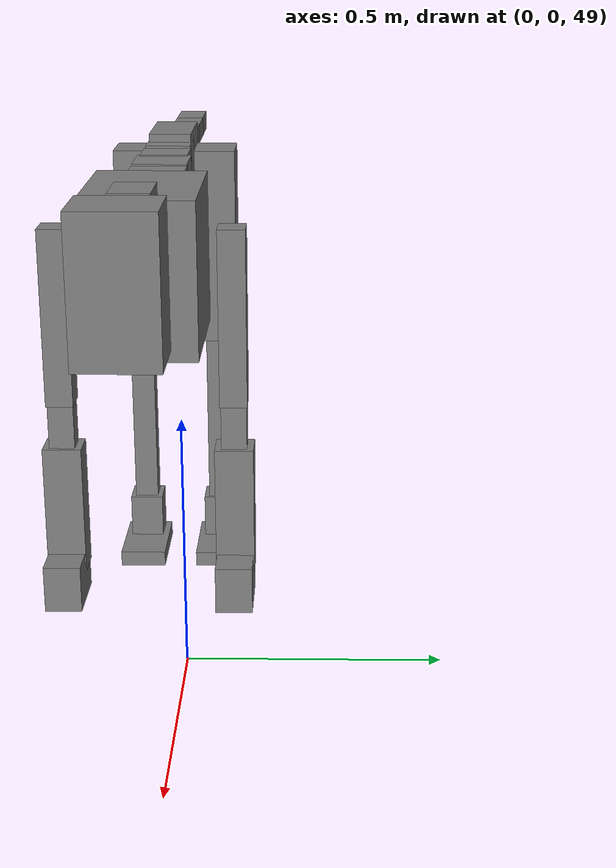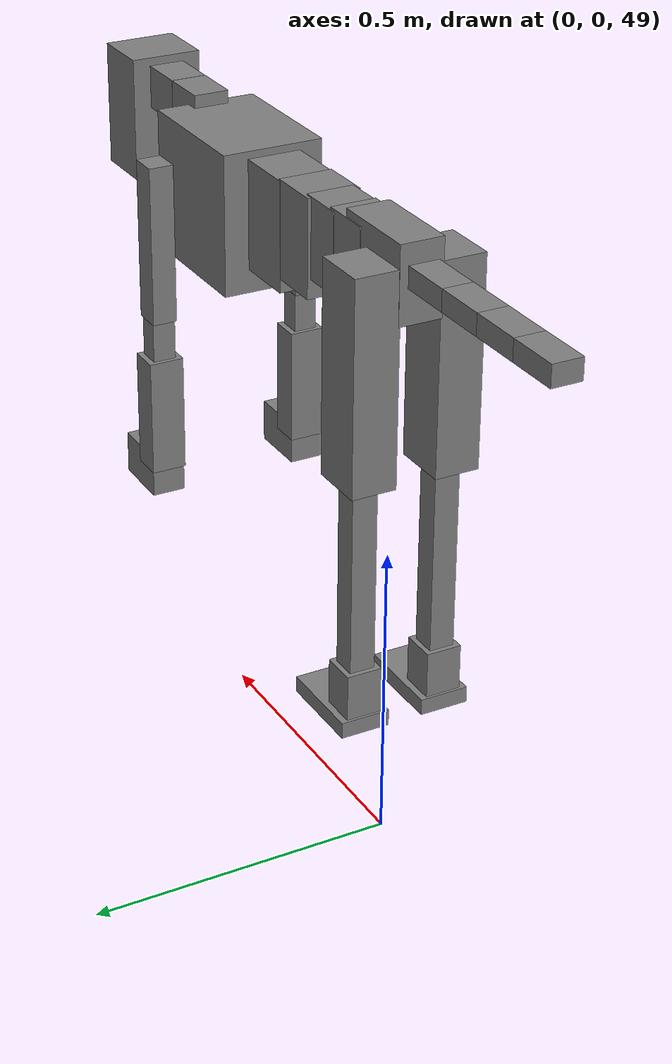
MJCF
<mujoco model="dog">

    <default>
        <joint armature="0.02" stiffness="1" damping="0.2" limited="true"/>
        <geom condim="3" friction="1 0.05 0.05" margin="0.01"/>
        <motor ctrllimited="true" ctrlrange="-1.0 1.0" forcelimited="true" gear="50"/>
    </default>

    <compiler inertiafromgeom="true" angle="radian"/>

    <option timestep="0.016" iterations="50" tolerance="1e-10" solver="Newton" jacobian="dense" cone="pyramidal"/>

    <size nconmax="20000" njmax="60000" nstack="5000000"/>
    <visual>
        <map force="0.1" zfar="30"/>
        <rgba haze="0.15 0.25 0.35 1"/>
        <quality shadowsize="2048"/>
        <global offwidth="800" offheight="800"/>
    </visual>

    <asset>
        <texture type="skybox" builtin="gradient" rgb1="0.3 0.5 0.7" rgb2="0 0 0" width="512" height="512"/>
        <texture name="texplane" type="2d" builtin="checker" rgb1=".2 .3 .4" rgb2=".1 0.15 0.2" width="512" height="512"
                 mark="cross" markrgb=".8 .8 .8"/>
        <texture name="texgeom" type="cube" builtin="flat" mark="cross" width="127" height="1278" rgb1="0.8 0.6 0.4"
                 rgb2="0.8 0.6 0.4" markrgb="1 1 1" random="0.01"/>

        <material name="matplane" reflectance="0.3" texture="texplane" texrepeat="1 1" texuniform="true"/>
        <material name="matgeom" texture="texgeom" texuniform="true" rgba="0.8 0.6 .4 1"/>
    </asset>

    <worldbody>
        <geom name="floor" pos="0 0 0" size="0 0 .25" type="plane" material="matplane" condim="3"/>

        <light directional="false" diffuse=".2 .2 .2" specular="0 0 0" pos="0 0 5" dir="0 0 -1" castshadow="false"/>
        <light mode="targetbodycom" target="torso" directional="false" diffuse=".8 .8 .8" specular="0.3 0.3 0.3"
               pos="0 0 4.0" dir="0 0 -1"/>

        <body name="root" pos="0 0 50">
            <freejoint name="root_1"/>
            <geom type="box" pos="0 0 -0.02" size="0.0774  0.0358  0.063" density="2030"/>

            <body name="spine1" pos="0.054 0 0">
                <joint name="spine1_y" axis="0 1 0" range="0 0.7" limited="true"/>
                <geom type="box" pos="0.02375 0 -0.03" size="0.04375  0.0375  0.05985" density="2030"/>

                <body name="spine2" pos="0.0612 0 0">
                    <joint name="spine2_y" axis="0 1 0" range="-0.15 0.15" limited="true"/>
                    <geom type="box" pos="0.03555  0  -0.04" size="0.04055  0.039  0.06615" density="2030"/>

                    <body name="spine3" pos="0.0730 0 0">
                        <joint name="spine3_y" axis="0 1 0" range="-0.15 0.15" limited="true"/>
                        <geom type="box" pos="0.03555  0  -0.057" size="0.04555  0.0445  0.081" density="2030"/>

                        <body name="spine4" pos="0.0780 0 0">
                            <joint name="spine4_y" axis="0 1 0" range="-0.15 0.15" limited="true"/>
                            <geom type="box" pos="0.05265  0  -0.07" size="0.05265  0.045  0.09135" density="2030"/>

                            <body name="torso" pos="0.1082 0 0">
                                <joint name="torso_y" axis="0 1 0" range="-0.15 0.15" limited="true"/>
                                <geom type="box" pos="0.11925  0  -0.085" size="0.11925  0.085  0.11745"
                                      density="2030"/>

                                <body name="neck1" pos="0.2160  0   0.0180">
                                    <joint name="neck1_y" axis="0 1 0" range="-1.2  -1" limited="true"/>
                                    <geom type="box" pos="0.0423  0  0" size="0.0423  0.03  0.036" density="2325"/>

                                    <body name="neck2" pos="0.0853  0  0">
                                        <joint name="neck2_y" axis="0 1 0" range="0.1  0" limited="true"/>
                                        <geom type="box" pos="0.0423  0  0" size="0.0423  0.03  0.036" density="2325"/>

                                        <body name="head" pos="0.0853  0  0">
                                            <joint name="head_y" axis="0 1 0" range="-0.3  -0.2" limited="true"/>
                                            <geom type="box" pos="0.0531  0  -0.055" size="0.0531  0.06  0.1044"
                                                  density="4030"/>

                                        </body>
                                    </body>
                                </body>

                                <body name="front_shoulder" pos="0.156  0   -0.0480">
                                    <joint name="front_shoulder_y" axis="0 1 0" range="-1 1.5" limited="true"/>
                                    <geom type="box" pos="0 0.13 -0.1079" size="0.0242  0.0207  0.1345" density="1158"/>
                                    <geom type="box" pos="0 -0.13 -0.1079" size="0.0242  0.0207  0.1345"
                                          density="1158"/>

                                    <body name="front_elbow" pos="0  0  -0.2158">
                                        <joint name="front_elbow_y" axis="0 1 0" range="-2 0" limited="true"/>
                                        <geom type="box" pos="0 0.13 -0.0535" size="0.0190  0.0194  0.0535"
                                              density="1081"/>
                                        <geom type="box" pos="0 -0.13 -0.0535" size="0.0190  0.0194  0.0535"
                                              density="1081"/>

                                        <body name="front_wrist" pos="0  0  -0.1071">
                                            <joint name="front_wrist_y" axis="0 1 0" range="-0.2 0" limited="true"/>
                                            <geom type="box" pos="0 0.13 -0.0862" size="0.0265  0.0294  0.0994"
                                                  density="1664"/>
                                            <geom type="box" pos="0 -0.13 -0.0862" size="0.0265  0.0294  0.0994"
                                                  density="1664"/>

                                            <body name="front_finger_end" pos="0  0  -0.1724">
                                                <joint name="front_finger_y" axis="0 1 0" range="-0.4 1"
                                                       limited="true"/>
                                                <geom type="box" pos="0.0280  0.13  -0.0211"
                                                      size="0.0513  0.0280  0.0361" density="1515"/>
                                                <geom type="box" pos="0.0280  -0.13  -0.0211"
                                                      size="0.0513  0.0280  0.0361" density="1515"/>

                                            </body>

                                        </body>
                                    </body>
                                </body>

                            </body>
                        </body>
                    </body>
                </body>
            </body>

            <body name="back_hip" pos="-0.03 0 -0.018">
                <joint name="back_hip_y" axis="0 1 0" range="-1.5 0.3" limited="true"/>
                <geom type="box" pos="0 0.07 -0.1505" size="0.0469  0.0368  0.1733" density="1154"/>
                <geom type="box" pos="0 -0.07 -0.1505" size="0.0469  0.0368  0.1733" density="1154"/>

                <body name="back_knee" pos="0  0  -0.3010">
                    <joint name="back_knee_y" axis="0 1 0" range="0 2.8" limited="true"/>
                    <geom type="box" pos="0 0.07 -0.1742" size="0.0211  0.0208  0.1898" density="1227"/>
                    <geom type="box" pos="0 -0.07 -0.1742" size="0.0211  0.0208  0.1898" density="1227"/>

                    <body name="back_ankle" pos="0  0  -0.3485">
                        <joint name="back_ankle_y" axis="0 1 0" range="-2.2 0" limited="true"/>
                        <geom type="box" pos="0 0.07 -0.0403" size="0.0294  0.0294  0.0515" density="1284"/>
                        <geom type="box" pos="0 -0.07 -0.0403" size="0.0294  0.0294  0.0515" density="1284"/>

                        <body name="back_toe_end" pos="0  0  -0.0806">
                            <joint name="back_toe_y" axis="0 1 0" range="-0.4 1" limited="true"/>
                            <geom type="box" pos="0.0407  0.07  0.0016" size="0.0746  0.0407  0.0134" density="1515"/>
                            <geom type="box" pos="0.0407  -0.07  0.0016" size="0.0746  0.0407  0.0134" density="1515"/>

                        </body>
                    </body>
                </body>
            </body>

            <body name="tail1" pos="-0.074 0 -0.006">
                <joint name="tail1_y" axis="0 1 0" range="-0.2 0.2" limited="true"/>
                <geom type="box" pos="-0.0536  0  0" size="0.045  0.025  0.0175" density="1587"/>

                <body name="tail2" pos="-0.09 0 0">
                    <joint name="tail2_y" axis="0 1 0" range="-0.2 0.2" limited="true"/>
                    <geom type="box" pos="-0.0536  0  0" size="0.045  0.025  0.0175" density="1587"/>

                    <body name="tail3" pos="-0.09 0 0">
                        <joint name="tail3_y" axis="0 1 0" range="-0.2 0.2" limited="true"/>
                        <geom type="box" pos="-0.0536  0  0" size="0.045  0.025  0.0175" density="1587"/>

                        <body name="tail4" pos="-0.09 0 0">
                            <joint name="tail4_y" axis="0 1 0" range="-0.2 0.2" limited="true"/>
                            <geom type="box" pos="-0.0536  0  0" size="0.045  0.025  0.0175" density="1587"/>

                        </body>
                    </body>
                </body>
            </body>
        </body>
    </worldbody>

    <actuator>
        <motor joint="spine1_y" forcerange="-150 150     "/>
        <motor joint="spine2_y" forcerange="-150 150     "/>
        <motor joint="spine3_y" forcerange="-150 150     "/>
        <motor joint="spine4_y" forcerange="-150 150     "/>
        <motor joint="torso_y" forcerange="-150 150     "/>
        <motor joint="neck1_y" forcerange="-100 100       "/>
        <motor joint="neck2_y" forcerange="-100 100       "/>
        <motor joint="head_y" forcerange="-150 150       "/>
        <motor joint="front_shoulder_y" forcerange="-119.33 118.50"/>
        <motor joint="front_elbow_y" forcerange="-134.01 107.14"/>
        <motor joint="front_wrist_y" forcerange="-130.13 105.04"/>
        <motor joint="front_finger_y" forcerange="-22.00 87.09"/>
        <motor joint="back_hip_y" forcerange="-366.79 323.43"/>
        <motor joint="back_knee_y" forcerange="-261.35 241.77"/>
        <motor joint="back_angle_y" forcerange="-138.83 232.16"/>
        <motor joint="back_toe_y" forcerange="-110.14 135.46"/>
        <motor joint="tail1_y" forcerange="-50 50     "/>
        <motor joint="tail2_y" forcerange="-50 50     "/>
        <motor joint="tail3_y" forcerange="-50 50     "/>
        <motor joint="tail4_y" forcerange="-50 50     "/>
    </actuator>
</mujoco>
